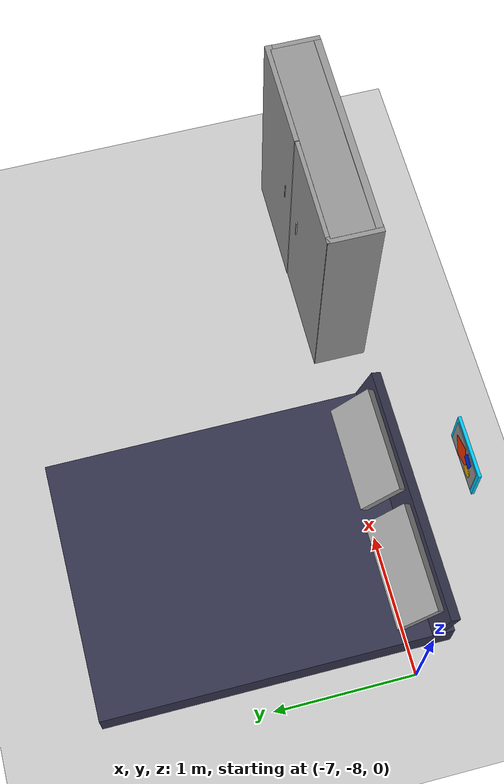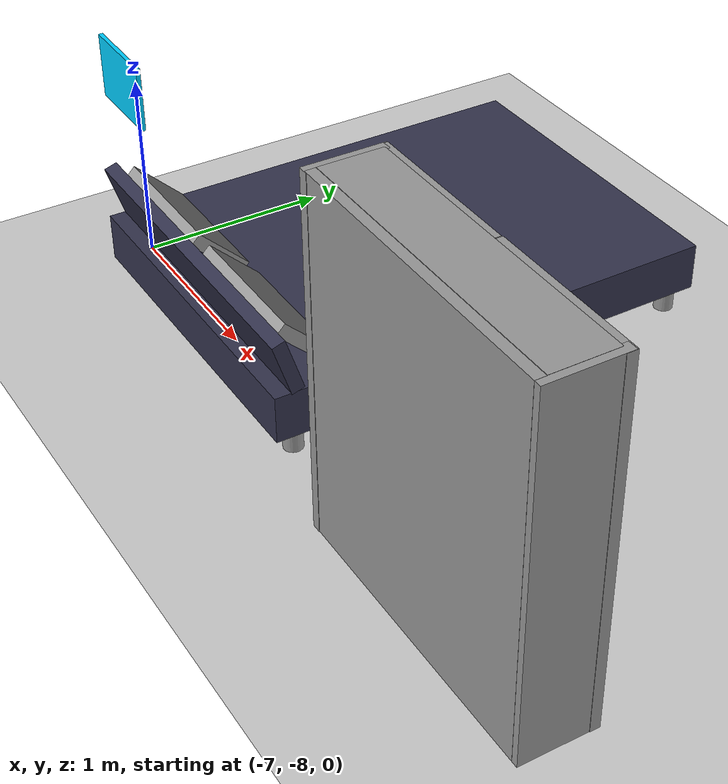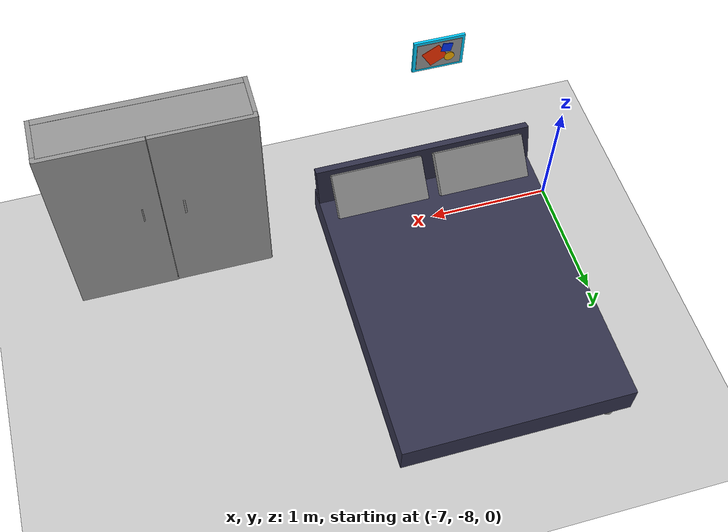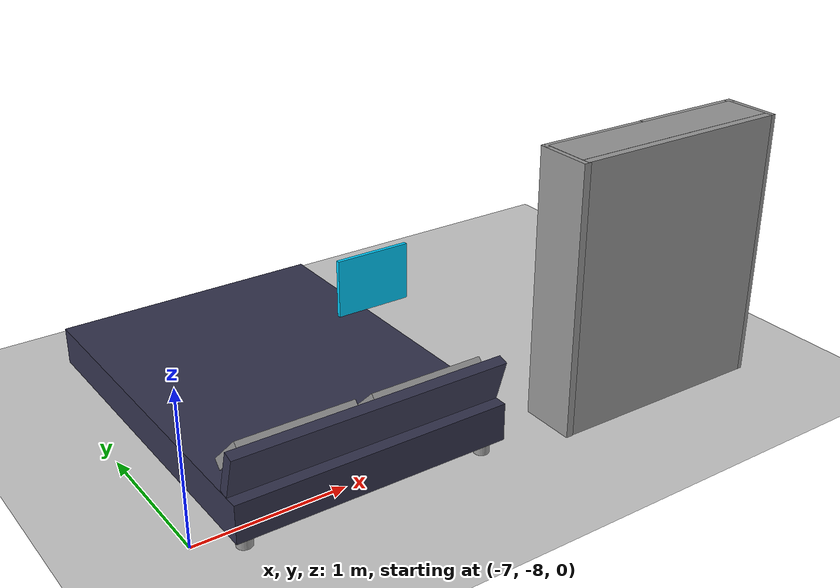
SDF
<sdf version="1.6">
 <world name="default">
  <model name="ground_plane">
   <static>1</static>
   <link name="link">
    <collision name="collision">
     <geometry><plane><normal>0 0 1</normal><size>100 100</size></plane></geometry>
     <surface>
      <contact><collide_bitmask>65535</collide_bitmask></contact>
      <friction><ode><mu>100</mu><mu2>50</mu2></ode></friction>
     </surface>
    </collision>
    <visual name="visual">
     <cast_shadows>0</cast_shadows>
     <geometry><plane><normal>0 0 1</normal><size>100 100</size></plane></geometry>
     <material>
      <script><uri>file://media/materials/scripts/gazebo.material</uri><name>Gazebo/Grey</name></script>
     </material>
    </visual>
   </link>
  </model>
  <model name="my_bed">
   <link name="link">
    <inertial>
     <mass>1</mass>
     <inertia>
      <ixx>0.166667</ixx>
      <ixy>0</ixy>
      <ixz>0</ixz>
      <iyy>0.166667</iyy>
      <iyz>0</iyz>
      <izz>0.166667</izz>
     </inertia>
    </inertial>
    <pose>-1.13234 -0.845126 0 0 -0 0</pose>
    <visual name="visual">
     <geometry><box><size>1.8 2.4 0.25</size></box></geometry>
     <material>
      <script><name>Gazebo/Grey</name><uri>file://media/materials/scripts/gazebo.material</uri></script>
      <shader type="pixel"><normal_map>__default__</normal_map></shader>
      <ambient>0.2 0.2 0.3 1</ambient>
      <diffuse>0.2 0.2 0.3 1</diffuse>
      <specular>0.01 0.01 0.01 1</specular>
      <emissive>0.1 0.1 0.1 1</emissive>
      <lighting>1</lighting>
     </material>
     <pose>0 0 0.25 0 -0 0</pose>
    </visual>
    <collision name="collision">
     <pose>0 0 0.25 0 -0 0</pose>
     <geometry><box><size>1.8 2.4 0.25</size></box></geometry>
     <surface>
      <friction>
       <ode><mu>1</mu><mu2>1</mu2><fdir1>0 0 0</fdir1><slip1>0</slip1><slip2>0</slip2></ode>
       <torsional>
        <coefficient>1</coefficient>
        <patch_radius>0</patch_radius>
        <surface_radius>0</surface_radius>
        <use_patch_radius>1</use_patch_radius>
        <ode><slip>0</slip></ode>
       </torsional>
      </friction>
      <bounce><restitution_coefficient>0</restitution_coefficient><threshold>1e+06</threshold></bounce>
      <contact>
       <collide_without_contact>0</collide_without_contact>
       <collide_without_contact_bitmask>1</collide_without_contact_bitmask>
       <collide_bitmask>1</collide_bitmask>
       <ode>
        <soft_cfm>0</soft_cfm>
        <soft_erp>0.2</soft_erp>
        <kp>1e+13</kp>
        <kd>1</kd>
        <max_vel>0.01</max_vel>
        <min_depth>0</min_depth>
       </ode>
       <bullet>
        <split_impulse>1</split_impulse>
        <split_impulse_penetration_threshold>-0.01</split_impulse_penetration_threshold>
        <soft_cfm>0</soft_cfm>
        <soft_erp>0.2</soft_erp>
        <kp>1e+13</kp>
        <kd>1</kd>
       </bullet>
      </contact>
     </surface>
    </collision>
   </link>
   <link name="link_0">
    <inertial>
     <mass>1</mass>
     <inertia><ixx>0.145833</ixx><ixy>0</ixy><ixz>0</ixz><iyy>0.145833</iyy><iyz>0</iyz><izz>0.125</izz></inertia>
    </inertial>
    <pose>-0.307109 0.243589 0.068801 0 -0 0</pose>
    <gravity>0</gravity>
    <visual name="visual">
     <geometry><cylinder><radius>0.05</radius><length>0.13</length></cylinder></geometry>
     <material>
      <lighting>1</lighting>
      <script><uri>file://media/materials/scripts/gazebo.material</uri><name>Gazebo/Grey</name></script>
      <shader type="pixel"><normal_map>__default__</normal_map></shader>
      <ambient>0.3 0.3 0.3 1</ambient>
      <diffuse>0.7 0.7 0.7 1</diffuse>
      <specular>0.01 0.01 0.01 1</specular>
      <emissive>0 0 0 1</emissive>
     </material>
    </visual>
    <collision name="collision">
     <geometry><cylinder><radius>0.05</radius><length>0.13</length></cylinder></geometry>
     <surface>
      <friction>
       <ode><mu>1</mu><mu2>1</mu2><fdir1>0 0 0</fdir1><slip1>0</slip1><slip2>0</slip2></ode>
       <torsional>
        <coefficient>1</coefficient>
        <patch_radius>0</patch_radius>
        <surface_radius>0</surface_radius>
        <use_patch_radius>1</use_patch_radius>
        <ode><slip>0</slip></ode>
       </torsional>
      </friction>
      <bounce><restitution_coefficient>0</restitution_coefficient><threshold>1e+06</threshold></bounce>
      <contact>
       <collide_without_contact>0</collide_without_contact>
       <collide_without_contact_bitmask>1</collide_without_contact_bitmask>
       <collide_bitmask>1</collide_bitmask>
       <ode>
        <soft_cfm>0</soft_cfm>
        <soft_erp>0.2</soft_erp>
        <kp>1e+13</kp>
        <kd>1</kd>
        <max_vel>0.01</max_vel>
        <min_depth>0</min_depth>
       </ode>
       <bullet>
        <split_impulse>1</split_impulse>
        <split_impulse_penetration_threshold>-0.01</split_impulse_penetration_threshold>
        <soft_cfm>0</soft_cfm>
        <soft_erp>0.2</soft_erp>
        <kp>1e+13</kp>
        <kd>1</kd>
       </bullet>
      </contact>
     </surface>
    </collision>
   </link>
   <link name="link_0_0_clone">
    <inertial>
     <mass>1</mass>
     <inertia>
      <ixx>0.166667</ixx>
      <ixy>0</ixy>
      <ixz>0</ixz>
      <iyy>0.166667</iyy>
      <iyz>0</iyz>
      <izz>0.166667</izz>
     </inertia>
    </inertial>
    <pose>-1.57153 -1.81704 0.527562 0 -0 0</pose>
    <gravity>0</gravity>
    <visual name="visual_0">
     <pose>0 0 0 0.8 -0 0</pose>
     <geometry><box><size>0.75 0.07 0.35</size></box></geometry>
     <material>
      <lighting>1</lighting>
      <script><uri>file://media/materials/scripts/gazebo.material</uri><name>Gazebo/Grey</name></script>
      <shader type="pixel"><normal_map>__default__</normal_map></shader>
      <ambient>1 1 1 0</ambient>
      <diffuse>1 1 1 1</diffuse>
      <specular>0.01 0.01 0.01 1</specular>
      <emissive>0 0 0 1</emissive>
     </material>
    </visual>
    <collision name="collision">
     <pose>0 0 0 0.8 -0 0</pose>
     <geometry><box><size>0.75 0.07 0.35</size></box></geometry>
     <surface>
      <friction>
       <ode><mu>1</mu><mu2>1</mu2><fdir1>0 0 0</fdir1><slip1>0</slip1><slip2>0</slip2></ode>
       <torsional>
        <coefficient>1</coefficient>
        <patch_radius>0</patch_radius>
        <surface_radius>0</surface_radius>
        <use_patch_radius>1</use_patch_radius>
        <ode><slip>0</slip></ode>
       </torsional>
      </friction>
      <bounce><restitution_coefficient>0</restitution_coefficient><threshold>1e+06</threshold></bounce>
      <contact>
       <collide_without_contact>0</collide_without_contact>
       <collide_without_contact_bitmask>1</collide_without_contact_bitmask>
       <collide_bitmask>1</collide_bitmask>
       <ode>
        <soft_cfm>0</soft_cfm>
        <soft_erp>0.2</soft_erp>
        <kp>1e+13</kp>
        <kd>1</kd>
        <max_vel>0.01</max_vel>
        <min_depth>0</min_depth>
       </ode>
       <bullet>
        <split_impulse>1</split_impulse>
        <split_impulse_penetration_threshold>-0.01</split_impulse_penetration_threshold>
        <soft_cfm>0</soft_cfm>
        <soft_erp>0.2</soft_erp>
        <kp>1e+13</kp>
        <kd>1</kd>
       </bullet>
      </contact>
     </surface>
    </collision>
   </link>
   <link name="link_0_0_clone_clone">
    <inertial>
     <mass>1</mass>
     <inertia>
      <ixx>0.166667</ixx>
      <ixy>0</ixy>
      <ixz>0</ixz>
      <iyy>0.166667</iyy>
      <iyz>0</iyz>
      <izz>0.166667</izz>
     </inertia>
    </inertial>
    <pose>-0.71588 -1.81886 0.527562 0 -0 0</pose>
    <gravity>0</gravity>
    <visual name="visual_0">
     <pose>0 0 0 0.8 -0 0</pose>
     <geometry><box><size>0.75 0.07 0.35</size></box></geometry>
     <material>
      <lighting>1</lighting>
      <script><uri>file://media/materials/scripts/gazebo.material</uri><name>Gazebo/Grey</name></script>
      <shader type="pixel"><normal_map>__default__</normal_map></shader>
      <ambient>1 1 1 0</ambient>
      <diffuse>1 1 1 1</diffuse>
      <specular>0.01 0.01 0.01 1</specular>
      <emissive>0 0 0 1</emissive>
     </material>
    </visual>
    <collision name="collision">
     <pose>0 0 0 0.8 -0 0</pose>
     <geometry><box><size>0.75 0.07 0.35</size></box></geometry>
     <surface>
      <friction>
       <ode><mu>1</mu><mu2>1</mu2><fdir1>0 0 0</fdir1><slip1>0</slip1><slip2>0</slip2></ode>
       <torsional>
        <coefficient>1</coefficient>
        <patch_radius>0</patch_radius>
        <surface_radius>0</surface_radius>
        <use_patch_radius>1</use_patch_radius>
        <ode><slip>0</slip></ode>
       </torsional>
      </friction>
      <bounce><restitution_coefficient>0</restitution_coefficient><threshold>1e+06</threshold></bounce>
      <contact>
       <collide_without_contact>0</collide_without_contact>
       <collide_without_contact_bitmask>1</collide_without_contact_bitmask>
       <collide_bitmask>1</collide_bitmask>
       <ode>
        <soft_cfm>0</soft_cfm>
        <soft_erp>0.2</soft_erp>
        <kp>1e+13</kp>
        <kd>1</kd>
        <max_vel>0.01</max_vel>
        <min_depth>0</min_depth>
       </ode>
       <bullet>
        <split_impulse>1</split_impulse>
        <split_impulse_penetration_threshold>-0.01</split_impulse_penetration_threshold>
        <soft_cfm>0</soft_cfm>
        <soft_erp>0.2</soft_erp>
        <kp>1e+13</kp>
        <kd>1</kd>
       </bullet>
      </contact>
     </surface>
    </collision>
   </link>
   <link name="link_0_clone">
    <inertial>
     <mass>1</mass>
     <inertia><ixx>0.145833</ixx><ixy>0</ixy><ixz>0</ixz><iyy>0.145833</iyy><iyz>0</iyz><izz>0.125</izz></inertia>
    </inertial>
    <pose>-1.9007 0.274345 0.068801 0 -0 0</pose>
    <gravity>0</gravity>
    <visual name="visual">
     <geometry><cylinder><radius>0.05</radius><length>0.13</length></cylinder></geometry>
     <material>
      <lighting>1</lighting>
      <script><uri>file://media/materials/scripts/gazebo.material</uri><name>Gazebo/Grey</name></script>
      <shader type="pixel"><normal_map>__default__</normal_map></shader>
      <ambient>0.3 0.3 0.3 1</ambient>
      <diffuse>0.7 0.7 0.7 1</diffuse>
      <specular>0.01 0.01 0.01 1</specular>
      <emissive>0 0 0 1</emissive>
     </material>
    </visual>
    <collision name="collision">
     <geometry><cylinder><radius>0.05</radius><length>0.13</length></cylinder></geometry>
     <surface>
      <friction>
       <ode><mu>1</mu><mu2>1</mu2><fdir1>0 0 0</fdir1><slip1>0</slip1><slip2>0</slip2></ode>
       <torsional>
        <coefficient>1</coefficient>
        <patch_radius>0</patch_radius>
        <surface_radius>0</surface_radius>
        <use_patch_radius>1</use_patch_radius>
        <ode><slip>0</slip></ode>
       </torsional>
      </friction>
      <bounce><restitution_coefficient>0</restitution_coefficient><threshold>1e+06</threshold></bounce>
      <contact>
       <collide_without_contact>0</collide_without_contact>
       <collide_without_contact_bitmask>1</collide_without_contact_bitmask>
       <collide_bitmask>1</collide_bitmask>
       <ode>
        <soft_cfm>0</soft_cfm>
        <soft_erp>0.2</soft_erp>
        <kp>1e+13</kp>
        <kd>1</kd>
        <max_vel>0.01</max_vel>
        <min_depth>0</min_depth>
       </ode>
       <bullet>
        <split_impulse>1</split_impulse>
        <split_impulse_penetration_threshold>-0.01</split_impulse_penetration_threshold>
        <soft_cfm>0</soft_cfm>
        <soft_erp>0.2</soft_erp>
        <kp>1e+13</kp>
        <kd>1</kd>
       </bullet>
      </contact>
     </surface>
    </collision>
   </link>
   <link name="link_0_clone_0">
    <inertial>
     <mass>1</mass>
     <inertia><ixx>0.145833</ixx><ixy>0</ixy><ixz>0</ixz><iyy>0.145833</iyy><iyz>0</iyz><izz>0.125</izz></inertia>
    </inertial>
    <pose>-0.307106 -1.92435 0.068801 0 -0 0</pose>
    <gravity>0</gravity>
    <visual name="visual">
     <geometry><cylinder><radius>0.05</radius><length>0.13</length></cylinder></geometry>
     <material>
      <lighting>1</lighting>
      <script><uri>file://media/materials/scripts/gazebo.material</uri><name>Gazebo/Grey</name></script>
      <shader type="pixel"><normal_map>__default__</normal_map></shader>
      <ambient>0.3 0.3 0.3 1</ambient>
      <diffuse>0.7 0.7 0.7 1</diffuse>
      <specular>0.01 0.01 0.01 1</specular>
      <emissive>0 0 0 1</emissive>
     </material>
    </visual>
    <collision name="collision">
     <geometry><cylinder><radius>0.05</radius><length>0.13</length></cylinder></geometry>
     <surface>
      <friction>
       <ode><mu>1</mu><mu2>1</mu2><fdir1>0 0 0</fdir1><slip1>0</slip1><slip2>0</slip2></ode>
       <torsional>
        <coefficient>1</coefficient>
        <patch_radius>0</patch_radius>
        <surface_radius>0</surface_radius>
        <use_patch_radius>1</use_patch_radius>
        <ode><slip>0</slip></ode>
       </torsional>
      </friction>
      <bounce><restitution_coefficient>0</restitution_coefficient><threshold>1e+06</threshold></bounce>
      <contact>
       <collide_without_contact>0</collide_without_contact>
       <collide_without_contact_bitmask>1</collide_without_contact_bitmask>
       <collide_bitmask>1</collide_bitmask>
       <ode>
        <soft_cfm>0</soft_cfm>
        <soft_erp>0.2</soft_erp>
        <kp>1e+13</kp>
        <kd>1</kd>
        <max_vel>0.01</max_vel>
        <min_depth>0</min_depth>
       </ode>
       <bullet>
        <split_impulse>1</split_impulse>
        <split_impulse_penetration_threshold>-0.01</split_impulse_penetration_threshold>
        <soft_cfm>0</soft_cfm>
        <soft_erp>0.2</soft_erp>
        <kp>1e+13</kp>
        <kd>1</kd>
       </bullet>
      </contact>
     </surface>
    </collision>
   </link>
   <link name="link_0_clone_1">
    <inertial>
     <mass>1</mass>
     <inertia><ixx>0.145833</ixx><ixy>0</ixy><ixz>0</ixz><iyy>0.145833</iyy><iyz>0</iyz><izz>0.125</izz></inertia>
    </inertial>
    <pose>-1.92795 -1.92176 0.068801 0 -0 0</pose>
    <gravity>0</gravity>
    <visual name="visual">
     <geometry><cylinder><radius>0.05</radius><length>0.13</length></cylinder></geometry>
     <material>
      <lighting>1</lighting>
      <script><uri>file://media/materials/scripts/gazebo.material</uri><name>Gazebo/Grey</name></script>
      <shader type="pixel"><normal_map>__default__</normal_map></shader>
      <ambient>0.3 0.3 0.3 1</ambient>
      <diffuse>0.7 0.7 0.7 1</diffuse>
      <specular>0.01 0.01 0.01 1</specular>
      <emissive>0 0 0 1</emissive>
     </material>
    </visual>
    <collision name="collision">
     <geometry><cylinder><radius>0.05</radius><length>0.13</length></cylinder></geometry>
     <surface>
      <friction>
       <ode><mu>1</mu><mu2>1</mu2><fdir1>0 0 0</fdir1><slip1>0</slip1><slip2>0</slip2></ode>
       <torsional>
        <coefficient>1</coefficient>
        <patch_radius>0</patch_radius>
        <surface_radius>0</surface_radius>
        <use_patch_radius>1</use_patch_radius>
        <ode><slip>0</slip></ode>
       </torsional>
      </friction>
      <bounce><restitution_coefficient>0</restitution_coefficient><threshold>1e+06</threshold></bounce>
      <contact>
       <collide_without_contact>0</collide_without_contact>
       <collide_without_contact_bitmask>1</collide_without_contact_bitmask>
       <collide_bitmask>1</collide_bitmask>
       <ode>
        <soft_cfm>0</soft_cfm>
        <soft_erp>0.2</soft_erp>
        <kp>1e+13</kp>
        <kd>1</kd>
        <max_vel>0.01</max_vel>
        <min_depth>0</min_depth>
       </ode>
       <bullet>
        <split_impulse>1</split_impulse>
        <split_impulse_penetration_threshold>-0.01</split_impulse_penetration_threshold>
        <soft_cfm>0</soft_cfm>
        <soft_erp>0.2</soft_erp>
        <kp>1e+13</kp>
        <kd>1</kd>
       </bullet>
      </contact>
     </surface>
    </collision>
   </link>
   <link name="link_1">
    <inertial>
     <mass>1</mass>
     <inertia>
      <ixx>0.166667</ixx>
      <ixy>0</ixy>
      <ixz>0</ixz>
      <iyy>0.166667</iyy>
      <iyz>0</iyz>
      <izz>0.166667</izz>
     </inertia>
    </inertial>
    <pose>-1.13157 -1.96783 0.518762 0 -0 0</pose>
    <visual name="visual">
     <pose>0 0 0 0.3 -0 0</pose>
     <geometry><box><size>1.8 0.07 0.3</size></box></geometry>
     <material>
      <lighting>1</lighting>
      <script><uri>file://media/materials/scripts/gazebo.material</uri><name>Gazebo/Grey</name></script>
      <shader type="pixel"><normal_map>__default__</normal_map></shader>
      <ambient>0.2 0.2 0.3 1</ambient>
      <diffuse>0.2 0.2 0.3 1</diffuse>
      <specular>0.01 0.01 0.01 1</specular>
      <emissive>0.1 0.1 0.1 1</emissive>
     </material>
    </visual>
    <collision name="collision">
     <pose>0 0 0 0.3 -0 0</pose>
     <geometry><box><size>1.8 0.07 0.3</size></box></geometry>
     <surface>
      <friction>
       <ode><mu>1</mu><mu2>1</mu2><fdir1>0 0 0</fdir1><slip1>0</slip1><slip2>0</slip2></ode>
       <torsional>
        <coefficient>1</coefficient>
        <patch_radius>0</patch_radius>
        <surface_radius>0</surface_radius>
        <use_patch_radius>1</use_patch_radius>
        <ode><slip>0</slip></ode>
       </torsional>
      </friction>
      <bounce><restitution_coefficient>0</restitution_coefficient><threshold>1e+06</threshold></bounce>
      <contact>
       <collide_without_contact>0</collide_without_contact>
       <collide_without_contact_bitmask>1</collide_without_contact_bitmask>
       <collide_bitmask>1</collide_bitmask>
       <ode>
        <soft_cfm>0</soft_cfm>
        <soft_erp>0.2</soft_erp>
        <kp>1e+13</kp>
        <kd>1</kd>
        <max_vel>0.01</max_vel>
        <min_depth>0</min_depth>
       </ode>
       <bullet>
        <split_impulse>1</split_impulse>
        <split_impulse_penetration_threshold>-0.01</split_impulse_penetration_threshold>
        <soft_cfm>0</soft_cfm>
        <soft_erp>0.2</soft_erp>
        <kp>1e+13</kp>
        <kd>1</kd>
       </bullet>
      </contact>
     </surface>
    </collision>
   </link>
   <static>1</static>
   <pose>-4.81541 -6.22935 0 0 -0 0</pose>
  </model>
  <model name="my_wardrobe">
   <link name="link">
    <inertial>
     <mass>1</mass>
     <inertia>
      <ixx>0.166667</ixx>
      <ixy>0</ixy>
      <ixz>0</ixz>
      <iyy>0.166667</iyy>
      <iyz>0</iyz>
      <izz>0.166667</izz>
     </inertia>
    </inertial>
    <pose>0.010503 -0.018536 0.006993 0 -0 0</pose>
    <visual name="visual">
     <geometry><box><size>0.05 1.5 1.8</size></box></geometry>
     <material>
      <script><name>Gazebo/Grey</name><uri>file://media/materials/scripts/gazebo.material</uri></script>
      <shader type="pixel"><normal_map>__default__</normal_map></shader>
      <ambient>0.9 0.9 0.9 1</ambient>
      <diffuse>0.9 0.9 0.9 1</diffuse>
      <specular>0.01 0.01 0.01 1</specular>
      <emissive>0 0 0 1</emissive>
     </material>
     <pose>0 0 0.9 0 -0 0</pose>
    </visual>
    <collision name="collision">
     <pose>0 0 0.9 0 -0 0</pose>
     <geometry><box><size>0.05 1.5 1.8</size></box></geometry>
     <surface>
      <friction>
       <ode><mu>1</mu><mu2>1</mu2><fdir1>0 0 0</fdir1><slip1>0</slip1><slip2>0</slip2></ode>
       <torsional>
        <coefficient>1</coefficient>
        <patch_radius>0</patch_radius>
        <surface_radius>0</surface_radius>
        <use_patch_radius>1</use_patch_radius>
        <ode><slip>0</slip></ode>
       </torsional>
      </friction>
      <bounce><restitution_coefficient>0</restitution_coefficient><threshold>1e+06</threshold></bounce>
      <contact>
       <collide_without_contact>0</collide_without_contact>
       <collide_without_contact_bitmask>1</collide_without_contact_bitmask>
       <collide_bitmask>1</collide_bitmask>
       <ode>
        <soft_cfm>0</soft_cfm>
        <soft_erp>0.2</soft_erp>
        <kp>1e+13</kp>
        <kd>1</kd>
        <max_vel>0.01</max_vel>
        <min_depth>0</min_depth>
       </ode>
       <bullet>
        <split_impulse>1</split_impulse>
        <split_impulse_penetration_threshold>-0.01</split_impulse_penetration_threshold>
        <soft_cfm>0</soft_cfm>
        <soft_erp>0.2</soft_erp>
        <kp>1e+13</kp>
        <kd>1</kd>
       </bullet>
      </contact>
     </surface>
    </collision>
   </link>
   <link name="link_1">
    <inertial>
     <mass>1</mass>
     <inertia>
      <ixx>0.166667</ixx>
      <ixy>0</ixy>
      <ixz>0</ixz>
      <iyy>0.166667</iyy>
      <iyz>0</iyz>
      <izz>0.166667</izz>
     </inertia>
    </inertial>
    <pose>0.374225 0.148278 0.975818 0 0 -1.57963</pose>
    <visual name="visual">
     <geometry><box><size>0.015 0.01 0.15</size></box></geometry>
     <material>
      <lighting>1</lighting>
      <script><uri>file://media/materials/scripts/gazebo.material</uri><name>Gazebo/Grey</name></script>
      <shader type="pixel"><normal_map>__default__</normal_map></shader>
      <ambient>0.3 0.3 0.3 1</ambient>
      <diffuse>0.7 0.7 0.7 1</diffuse>
      <specular>0.01 0.01 0.01 1</specular>
      <emissive>0 0 0 1</emissive>
     </material>
    </visual>
    <collision name="collision">
     <geometry><box><size>0.015 0.01 0.15</size></box></geometry>
     <surface>
      <friction>
       <ode><mu>1</mu><mu2>1</mu2><fdir1>0 0 0</fdir1><slip1>0</slip1><slip2>0</slip2></ode>
       <torsional>
        <coefficient>1</coefficient>
        <patch_radius>0</patch_radius>
        <surface_radius>0</surface_radius>
        <use_patch_radius>1</use_patch_radius>
        <ode><slip>0</slip></ode>
       </torsional>
      </friction>
      <bounce><restitution_coefficient>0</restitution_coefficient><threshold>1e+06</threshold></bounce>
      <contact>
       <collide_without_contact>0</collide_without_contact>
       <collide_without_contact_bitmask>1</collide_without_contact_bitmask>
       <collide_bitmask>1</collide_bitmask>
       <ode>
        <soft_cfm>0</soft_cfm>
        <soft_erp>0.2</soft_erp>
        <kp>1e+13</kp>
        <kd>1</kd>
        <max_vel>0.01</max_vel>
        <min_depth>0</min_depth>
       </ode>
       <bullet>
        <split_impulse>1</split_impulse>
        <split_impulse_penetration_threshold>-0.01</split_impulse_penetration_threshold>
        <soft_cfm>0</soft_cfm>
        <soft_erp>0.2</soft_erp>
        <kp>1e+13</kp>
        <kd>1</kd>
       </bullet>
      </contact>
     </surface>
    </collision>
   </link>
   <link name="link_1_clone">
    <inertial>
     <mass>1</mass>
     <inertia>
      <ixx>0.166667</ixx>
      <ixy>0</ixy>
      <ixz>0</ixz>
      <iyy>0.166667</iyy>
      <iyz>0</iyz>
      <izz>0.166667</izz>
     </inertia>
    </inertial>
    <pose>0.36807 -0.165856 0.973071 0 -0 3.12392</pose>
    <visual name="visual">
     <geometry><box><size>0.015 0.01 0.15</size></box></geometry>
     <material>
      <lighting>1</lighting>
      <script><uri>file://media/materials/scripts/gazebo.material</uri><name>Gazebo/Grey</name></script>
      <shader type="pixel"><normal_map>__default__</normal_map></shader>
      <ambient>0.3 0.3 0.3 1</ambient>
      <diffuse>0.7 0.7 0.7 1</diffuse>
      <specular>0.01 0.01 0.01 1</specular>
      <emissive>0 0 0 1</emissive>
     </material>
    </visual>
    <collision name="collision">
     <geometry><box><size>0.015 0.01 0.15</size></box></geometry>
     <surface>
      <friction>
       <ode><mu>1</mu><mu2>1</mu2><fdir1>0 0 0</fdir1><slip1>0</slip1><slip2>0</slip2></ode>
       <torsional>
        <coefficient>1</coefficient>
        <patch_radius>0</patch_radius>
        <surface_radius>0</surface_radius>
        <use_patch_radius>1</use_patch_radius>
        <ode><slip>0</slip></ode>
       </torsional>
      </friction>
      <bounce><restitution_coefficient>0</restitution_coefficient><threshold>1e+06</threshold></bounce>
      <contact>
       <collide_without_contact>0</collide_without_contact>
       <collide_without_contact_bitmask>1</collide_without_contact_bitmask>
       <collide_bitmask>1</collide_bitmask>
       <ode>
        <soft_cfm>0</soft_cfm>
        <soft_erp>0.2</soft_erp>
        <kp>1e+13</kp>
        <kd>1</kd>
        <max_vel>0.01</max_vel>
        <min_depth>0</min_depth>
       </ode>
       <bullet>
        <split_impulse>1</split_impulse>
        <split_impulse_penetration_threshold>-0.01</split_impulse_penetration_threshold>
        <soft_cfm>0</soft_cfm>
        <soft_erp>0.2</soft_erp>
        <kp>1e+13</kp>
        <kd>1</kd>
       </bullet>
      </contact>
     </surface>
    </collision>
   </link>
   <link name="link_clone">
    <inertial>
     <mass>1</mass>
     <inertia>
      <ixx>0.166667</ixx>
      <ixy>0</ixy>
      <ixz>0</ixz>
      <iyy>0.166667</iyy>
      <iyz>0</iyz>
      <izz>0.166667</izz>
     </inertia>
    </inertial>
    <pose>0.199559 -0.011174 -1.077 1.1e-05 -0.001065 2e-06</pose>
    <visual name="visual">
     <geometry><box><size>0.3 1.5 0.04</size></box></geometry>
     <material>
      <script><name>Gazebo/Grey</name><uri>file://media/materials/scripts/gazebo.material</uri></script>
      <shader type="pixel"><normal_map>__default__</normal_map></shader>
      <ambient>0.9 0.9 0.9 1</ambient>
      <diffuse>0.9 0.9 0.9 1</diffuse>
      <specular>0.01 0.01 0.01 1</specular>
      <emissive>0 0 0 1</emissive>
     </material>
     <pose>0 0 1.1 0 -0 0</pose>
    </visual>
    <collision name="collision">
     <pose>0 0 1.1 0 -0 0</pose>
     <geometry><box><size>0.3 1.5 0.04</size></box></geometry>
     <surface>
      <friction>
       <ode><mu>1</mu><mu2>1</mu2><fdir1>0 0 0</fdir1><slip1>0</slip1><slip2>0</slip2></ode>
       <torsional>
        <coefficient>1</coefficient>
        <patch_radius>0</patch_radius>
        <surface_radius>0</surface_radius>
        <use_patch_radius>1</use_patch_radius>
        <ode><slip>0</slip></ode>
       </torsional>
      </friction>
      <bounce><restitution_coefficient>0</restitution_coefficient><threshold>1e+06</threshold></bounce>
      <contact>
       <collide_without_contact>0</collide_without_contact>
       <collide_without_contact_bitmask>1</collide_without_contact_bitmask>
       <collide_bitmask>1</collide_bitmask>
       <ode>
        <soft_cfm>0</soft_cfm>
        <soft_erp>0.2</soft_erp>
        <kp>1e+13</kp>
        <kd>1</kd>
        <max_vel>0.01</max_vel>
        <min_depth>0</min_depth>
       </ode>
       <bullet>
        <split_impulse>1</split_impulse>
        <split_impulse_penetration_threshold>-0.01</split_impulse_penetration_threshold>
        <soft_cfm>0</soft_cfm>
        <soft_erp>0.2</soft_erp>
        <kp>1e+13</kp>
        <kd>1</kd>
       </bullet>
      </contact>
     </surface>
    </collision>
   </link>
   <link name="link_clone_0">
    <inertial>
     <mass>1</mass>
     <inertia>
      <ixx>0.166667</ixx>
      <ixy>0</ixy>
      <ixz>0</ixz>
      <iyy>0.166667</iyy>
      <iyz>0</iyz>
      <izz>0.166667</izz>
     </inertia>
    </inertial>
    <pose>0.1762 -0.777121 0.006003 0 -0 0</pose>
    <visual name="visual">
     <geometry><box><size>0.05 0.38 1.8</size></box></geometry>
     <material>
      <script><name>Gazebo/Grey</name><uri>file://media/materials/scripts/gazebo.material</uri></script>
      <shader type="pixel"><normal_map>__default__</normal_map></shader>
      <ambient>0.9 0.9 0.9 1</ambient>
      <diffuse>0.9 0.9 0.9 1</diffuse>
      <specular>0.01 0.01 0.01 1</specular>
      <emissive>0 0 0 1</emissive>
     </material>
     <pose>0 0 0.9 0 -0 1.5707</pose>
    </visual>
    <collision name="collision">
     <pose>0 0 0.9 0 -0 1.5707</pose>
     <geometry><box><size>0.05 0.38 1.8</size></box></geometry>
     <surface>
      <friction>
       <ode><mu>1</mu><mu2>1</mu2><fdir1>0 0 0</fdir1><slip1>0</slip1><slip2>0</slip2></ode>
       <torsional>
        <coefficient>1</coefficient>
        <patch_radius>0</patch_radius>
        <surface_radius>0</surface_radius>
        <use_patch_radius>1</use_patch_radius>
        <ode><slip>0</slip></ode>
       </torsional>
      </friction>
      <bounce><restitution_coefficient>0</restitution_coefficient><threshold>1e+06</threshold></bounce>
      <contact>
       <collide_without_contact>0</collide_without_contact>
       <collide_without_contact_bitmask>1</collide_without_contact_bitmask>
       <collide_bitmask>1</collide_bitmask>
       <ode>
        <soft_cfm>0</soft_cfm>
        <soft_erp>0.2</soft_erp>
        <kp>1e+13</kp>
        <kd>1</kd>
        <max_vel>0.01</max_vel>
        <min_depth>0</min_depth>
       </ode>
       <bullet>
        <split_impulse>1</split_impulse>
        <split_impulse_penetration_threshold>-0.01</split_impulse_penetration_threshold>
        <soft_cfm>0</soft_cfm>
        <soft_erp>0.2</soft_erp>
        <kp>1e+13</kp>
        <kd>1</kd>
       </bullet>
      </contact>
     </surface>
    </collision>
   </link>
   <link name="link_clone_0_clone">
    <inertial>
     <mass>1</mass>
     <inertia>
      <ixx>0.166667</ixx>
      <ixy>0</ixy>
      <ixz>0</ixz>
      <iyy>0.166667</iyy>
      <iyz>0</iyz>
      <izz>0.166667</izz>
     </inertia>
    </inertial>
    <pose>0.173251 0.740189 0.006003 0 -0 0</pose>
    <visual name="visual">
     <geometry><box><size>0.05 0.38 1.8</size></box></geometry>
     <material>
      <script><name>Gazebo/Grey</name><uri>file://media/materials/scripts/gazebo.material</uri></script>
      <shader type="pixel"><normal_map>__default__</normal_map></shader>
      <ambient>0.9 0.9 0.9 1</ambient>
      <diffuse>0.9 0.9 0.9 1</diffuse>
      <specular>0.01 0.01 0.01 1</specular>
      <emissive>0 0 0 1</emissive>
     </material>
     <pose>0 0 0.9 0 -0 1.5707</pose>
    </visual>
    <collision name="collision">
     <pose>0 0 0.9 0 -0 1.5707</pose>
     <geometry><box><size>0.05 0.38 1.8</size></box></geometry>
     <surface>
      <friction>
       <ode><mu>1</mu><mu2>1</mu2><fdir1>0 0 0</fdir1><slip1>0</slip1><slip2>0</slip2></ode>
       <torsional>
        <coefficient>1</coefficient>
        <patch_radius>0</patch_radius>
        <surface_radius>0</surface_radius>
        <use_patch_radius>1</use_patch_radius>
        <ode><slip>0</slip></ode>
       </torsional>
      </friction>
      <bounce><restitution_coefficient>0</restitution_coefficient><threshold>1e+06</threshold></bounce>
      <contact>
       <collide_without_contact>0</collide_without_contact>
       <collide_without_contact_bitmask>1</collide_without_contact_bitmask>
       <collide_bitmask>1</collide_bitmask>
       <ode>
        <soft_cfm>0</soft_cfm>
        <soft_erp>0.2</soft_erp>
        <kp>1e+13</kp>
        <kd>1</kd>
        <max_vel>0.01</max_vel>
        <min_depth>0</min_depth>
       </ode>
       <bullet>
        <split_impulse>1</split_impulse>
        <split_impulse_penetration_threshold>-0.01</split_impulse_penetration_threshold>
        <soft_cfm>0</soft_cfm>
        <soft_erp>0.2</soft_erp>
        <kp>1e+13</kp>
        <kd>1</kd>
       </bullet>
      </contact>
     </surface>
    </collision>
   </link>
   <link name="link_clone_0_clone_0">
    <inertial>
     <mass>1</mass>
     <inertia>
      <ixx>0.166667</ixx>
      <ixy>0</ixy>
      <ixz>0</ixz>
      <iyy>0.166667</iyy>
      <iyz>0</iyz>
      <izz>0.166667</izz>
     </inertia>
    </inertial>
    <pose>0.345768 -0.414419 0.006003 0 -0 0</pose>
    <visual name="visual">
     <geometry><box><size>0.05 0.78 1.8</size></box></geometry>
     <material>
      <script><name>Gazebo/Grey</name><uri>file://media/materials/scripts/gazebo.material</uri></script>
      <shader type="pixel"><normal_map>__default__</normal_map></shader>
      <ambient>0.87 0.87 0.87 1</ambient>
      <diffuse>0.87 0.87 0.87 1</diffuse>
      <specular>0.01 0.01 0.01 1</specular>
      <emissive>0 0 0 1</emissive>
     </material>
     <pose>0 0 0.9 0 -0 0</pose>
    </visual>
    <collision name="collision">
     <pose>0 0 0.9 0 -0 0</pose>
     <geometry><box><size>0.05 0.78 1.8</size></box></geometry>
     <surface>
      <friction>
       <ode><mu>1</mu><mu2>1</mu2><fdir1>0 0 0</fdir1><slip1>0</slip1><slip2>0</slip2></ode>
       <torsional>
        <coefficient>1</coefficient>
        <patch_radius>0</patch_radius>
        <surface_radius>0</surface_radius>
        <use_patch_radius>1</use_patch_radius>
        <ode><slip>0</slip></ode>
       </torsional>
      </friction>
      <bounce><restitution_coefficient>0</restitution_coefficient><threshold>1e+06</threshold></bounce>
      <contact>
       <collide_without_contact>0</collide_without_contact>
       <collide_without_contact_bitmask>1</collide_without_contact_bitmask>
       <collide_bitmask>1</collide_bitmask>
       <ode>
        <soft_cfm>0</soft_cfm>
        <soft_erp>0.2</soft_erp>
        <kp>1e+13</kp>
        <kd>1</kd>
        <max_vel>0.01</max_vel>
        <min_depth>0</min_depth>
       </ode>
       <bullet>
        <split_impulse>1</split_impulse>
        <split_impulse_penetration_threshold>-0.01</split_impulse_penetration_threshold>
        <soft_cfm>0</soft_cfm>
        <soft_erp>0.2</soft_erp>
        <kp>1e+13</kp>
        <kd>1</kd>
       </bullet>
      </contact>
     </surface>
    </collision>
   </link>
   <link name="link_clone_0_clone_0_clone">
    <inertial>
     <mass>1</mass>
     <inertia>
      <ixx>0.166667</ixx>
      <ixy>0</ixy>
      <ixz>0</ixz>
      <iyy>0.166667</iyy>
      <iyz>0</iyz>
      <izz>0.166667</izz>
     </inertia>
    </inertial>
    <pose>0.34164 0.370965 0.006003 0 -0 0</pose>
    <visual name="visual">
     <geometry><box><size>0.05 0.78 1.8</size></box></geometry>
     <material>
      <script><name>Gazebo/Grey</name><uri>file://media/materials/scripts/gazebo.material</uri></script>
      <shader type="pixel"><normal_map>__default__</normal_map></shader>
      <ambient>0.87 0.87 0.87 1</ambient>
      <diffuse>0.87 0.87 0.87 1</diffuse>
      <specular>0.01 0.01 0.01 1</specular>
      <emissive>0 0 0 1</emissive>
     </material>
     <pose>0 0 0.9 0 -0 0</pose>
    </visual>
    <collision name="collision">
     <pose>0 0 0.9 0 -0 0</pose>
     <geometry><box><size>0.05 0.78 1.8</size></box></geometry>
     <surface>
      <friction>
       <ode><mu>1</mu><mu2>1</mu2><fdir1>0 0 0</fdir1><slip1>0</slip1><slip2>0</slip2></ode>
       <torsional>
        <coefficient>1</coefficient>
        <patch_radius>0</patch_radius>
        <surface_radius>0</surface_radius>
        <use_patch_radius>1</use_patch_radius>
        <ode><slip>0</slip></ode>
       </torsional>
      </friction>
      <bounce><restitution_coefficient>0</restitution_coefficient><threshold>1e+06</threshold></bounce>
      <contact>
       <collide_without_contact>0</collide_without_contact>
       <collide_without_contact_bitmask>1</collide_without_contact_bitmask>
       <collide_bitmask>1</collide_bitmask>
       <ode>
        <soft_cfm>0</soft_cfm>
        <soft_erp>0.2</soft_erp>
        <kp>1e+13</kp>
        <kd>1</kd>
        <max_vel>0.01</max_vel>
        <min_depth>0</min_depth>
       </ode>
       <bullet>
        <split_impulse>1</split_impulse>
        <split_impulse_penetration_threshold>-0.01</split_impulse_penetration_threshold>
        <soft_cfm>0</soft_cfm>
        <soft_erp>0.2</soft_erp>
        <kp>1e+13</kp>
        <kd>1</kd>
       </bullet>
      </contact>
     </surface>
    </collision>
   </link>
   <link name="link_clone_clone_0">
    <inertial>
     <mass>1</mass>
     <inertia>
      <ixx>0.166667</ixx>
      <ixy>0</ixy>
      <ixz>0</ixz>
      <iyy>0.166667</iyy>
      <iyz>0</iyz>
      <izz>0.166667</izz>
     </inertia>
    </inertial>
    <pose>0.186363 -0.017339 0.93719 2.2e-05 0.000604 0.000114</pose>
    <gravity>0</gravity>
    <visual name="visual">
     <geometry><box><size>0.3 1.5 0.04</size></box></geometry>
     <material>
      <script><name>Gazebo/Grey</name><uri>file://media/materials/scripts/gazebo.material</uri></script>
      <shader type="pixel"><normal_map>__default__</normal_map></shader>
      <ambient>0.9 0.9 0.9 1</ambient>
      <diffuse>0.9 0.9 0.9 1</diffuse>
      <specular>0.01 0.01 0.01 1</specular>
      <emissive>0 0 0 1</emissive>
     </material>
     <pose>0 0 0.85 0 -0 0</pose>
    </visual>
    <collision name="collision">
     <pose>0 0 0.85 0 -0 0</pose>
     <geometry><box><size>0.3 1.5 0.04</size></box></geometry>
     <surface>
      <friction>
       <ode><mu>1</mu><mu2>1</mu2><fdir1>0 0 0</fdir1><slip1>0</slip1><slip2>0</slip2></ode>
       <torsional>
        <coefficient>1</coefficient>
        <patch_radius>0</patch_radius>
        <surface_radius>0</surface_radius>
        <use_patch_radius>1</use_patch_radius>
        <ode><slip>0</slip></ode>
       </torsional>
      </friction>
      <bounce><restitution_coefficient>0</restitution_coefficient><threshold>1e+06</threshold></bounce>
      <contact>
       <collide_without_contact>0</collide_without_contact>
       <collide_without_contact_bitmask>1</collide_without_contact_bitmask>
       <collide_bitmask>1</collide_bitmask>
       <ode>
        <soft_cfm>0</soft_cfm>
        <soft_erp>0.2</soft_erp>
        <kp>1e+13</kp>
        <kd>1</kd>
        <max_vel>0.01</max_vel>
        <min_depth>0</min_depth>
       </ode>
       <bullet>
        <split_impulse>1</split_impulse>
        <split_impulse_penetration_threshold>-0.01</split_impulse_penetration_threshold>
        <soft_cfm>0</soft_cfm>
        <soft_erp>0.2</soft_erp>
        <kp>1e+13</kp>
        <kd>1</kd>
       </bullet>
      </contact>
     </surface>
    </collision>
   </link>
   <static>1</static>
   <pose>-3.83138 -8.32756 0 0 -0 1.56496</pose>
  </model>
  <model name="my_frame_0">
   <link name="link">
    <inertial>
     <mass>1</mass>
     <inertia>
      <ixx>0.166667</ixx>
      <ixy>0</ixy>
      <ixz>0</ixz>
      <iyy>0.166667</iyy>
      <iyz>0</iyz>
      <izz>0.166667</izz>
     </inertia>
    </inertial>
    <gravity>0</gravity>
    <visual name="visual">
     <geometry><box><size>0.02 0.4 0.3</size></box></geometry>
     <material>
      <script><name>Gazebo/Grey</name><uri>file://media/materials/scripts/gazebo.material</uri></script>
      <shader type="pixel"><normal_map>__default__</normal_map></shader>
      <ambient>0 0.81 1 1</ambient>
      <diffuse>0.7 0.7 0.7 1</diffuse>
      <specular>0.01 0.01 0.01 1</specular>
      <emissive>0 0 0 1</emissive>
     </material>
    </visual>
    <collision name="collision">
     <geometry><box><size>0.02 0.4 0.3</size></box></geometry>
     <surface>
      <friction>
       <ode><mu>1</mu><mu2>1</mu2><fdir1>0 0 0</fdir1><slip1>0</slip1><slip2>0</slip2></ode>
       <torsional>
        <coefficient>1</coefficient>
        <patch_radius>0</patch_radius>
        <surface_radius>0</surface_radius>
        <use_patch_radius>1</use_patch_radius>
        <ode><slip>0</slip></ode>
       </torsional>
      </friction>
      <bounce><restitution_coefficient>0</restitution_coefficient><threshold>1e+06</threshold></bounce>
      <contact>
       <collide_without_contact>0</collide_without_contact>
       <collide_without_contact_bitmask>1</collide_without_contact_bitmask>
       <collide_bitmask>1</collide_bitmask>
       <ode>
        <soft_cfm>0</soft_cfm>
        <soft_erp>0.2</soft_erp>
        <kp>1e+13</kp>
        <kd>1</kd>
        <max_vel>0.01</max_vel>
        <min_depth>0</min_depth>
       </ode>
       <bullet>
        <split_impulse>1</split_impulse>
        <split_impulse_penetration_threshold>-0.01</split_impulse_penetration_threshold>
        <soft_cfm>0</soft_cfm>
        <soft_erp>0.2</soft_erp>
        <kp>1e+13</kp>
        <kd>1</kd>
       </bullet>
      </contact>
     </surface>
    </collision>
   </link>
   <link name="link_2">
    <inertial>
     <mass>1</mass>
     <inertia><ixx>0.145833</ixx><ixy>0</ixy><ixz>0</ixz><iyy>0.145833</iyy><iyz>0</iyz><izz>0.125</izz></inertia>
    </inertial>
    <pose>0.015889 0.084711 -0.037956 0 -0 0</pose>
    <gravity>0</gravity>
    <visual name="visual">
     <pose>0 0 0 0 1.5707 0</pose>
     <geometry><cylinder><radius>0.04</radius><length>0.01</length></cylinder></geometry>
     <material>
      <lighting>1</lighting>
      <script><uri>file://media/materials/scripts/gazebo.material</uri><name>Gazebo/Grey</name></script>
      <shader type="pixel"><normal_map>__default__</normal_map></shader>
      <ambient>0.99 0.7 0 1</ambient>
      <diffuse>0.7 0.7 0.7 1</diffuse>
      <specular>0.01 0.01 0.01 1</specular>
      <emissive>0 0 0 1</emissive>
     </material>
    </visual>
    <collision name="collision">
     <pose>0 0 0 0 1.5707 0</pose>
     <geometry><cylinder><radius>0.04</radius><length>0.01</length></cylinder></geometry>
     <surface>
      <friction>
       <ode><mu>1</mu><mu2>1</mu2><fdir1>0 0 0</fdir1><slip1>0</slip1><slip2>0</slip2></ode>
       <torsional>
        <coefficient>1</coefficient>
        <patch_radius>0</patch_radius>
        <surface_radius>0</surface_radius>
        <use_patch_radius>1</use_patch_radius>
        <ode><slip>0</slip></ode>
       </torsional>
      </friction>
      <bounce><restitution_coefficient>0</restitution_coefficient><threshold>1e+06</threshold></bounce>
      <contact>
       <collide_without_contact>0</collide_without_contact>
       <collide_without_contact_bitmask>1</collide_without_contact_bitmask>
       <collide_bitmask>1</collide_bitmask>
       <ode>
        <soft_cfm>0</soft_cfm>
        <soft_erp>0.2</soft_erp>
        <kp>1e+13</kp>
        <kd>1</kd>
        <max_vel>0.01</max_vel>
        <min_depth>0</min_depth>
       </ode>
       <bullet>
        <split_impulse>1</split_impulse>
        <split_impulse_penetration_threshold>-0.01</split_impulse_penetration_threshold>
        <soft_cfm>0</soft_cfm>
        <soft_erp>0.2</soft_erp>
        <kp>1e+13</kp>
        <kd>1</kd>
       </bullet>
      </contact>
     </surface>
    </collision>
   </link>
   <link name="link_3">
    <inertial>
     <mass>1</mass>
     <inertia>
      <ixx>0.166667</ixx>
      <ixy>0</ixy>
      <ixz>0</ixz>
      <iyy>0.166667</iyy>
      <iyz>0</iyz>
      <izz>0.166667</izz>
     </inertia>
    </inertial>
    <pose>0.013898 -0.032005 0 0 -0 0</pose>
    <gravity>0</gravity>
    <visual name="visual">
     <pose>0 0 0 0.54 -0 0</pose>
     <geometry><box><size>0.01 0.15 0.15</size></box></geometry>
     <material>
      <lighting>1</lighting>
      <script><uri>file://media/materials/scripts/gazebo.material</uri><name>Gazebo/Grey</name></script>
      <shader type="pixel"><normal_map>__default__</normal_map></shader>
      <ambient>1 0.2 0 1</ambient>
      <diffuse>0.7 0.7 0.7 1</diffuse>
      <specular>0.01 0.01 0.01 1</specular>
      <emissive>0 0 0 1</emissive>
     </material>
    </visual>
    <collision name="collision">
     <pose>0 0 0 0.54 -0 0</pose>
     <geometry><box><size>0.01 0.15 0.15</size></box></geometry>
     <surface>
      <friction>
       <ode><mu>1</mu><mu2>1</mu2><fdir1>0 0 0</fdir1><slip1>0</slip1><slip2>0</slip2></ode>
       <torsional>
        <coefficient>1</coefficient>
        <patch_radius>0</patch_radius>
        <surface_radius>0</surface_radius>
        <use_patch_radius>1</use_patch_radius>
        <ode><slip>0</slip></ode>
       </torsional>
      </friction>
      <bounce><restitution_coefficient>0</restitution_coefficient><threshold>1e+06</threshold></bounce>
      <contact>
       <collide_without_contact>0</collide_without_contact>
       <collide_without_contact_bitmask>1</collide_without_contact_bitmask>
       <collide_bitmask>1</collide_bitmask>
       <ode>
        <soft_cfm>0</soft_cfm>
        <soft_erp>0.2</soft_erp>
        <kp>1e+13</kp>
        <kd>1</kd>
        <max_vel>0.01</max_vel>
        <min_depth>0</min_depth>
       </ode>
       <bullet>
        <split_impulse>1</split_impulse>
        <split_impulse_penetration_threshold>-0.01</split_impulse_penetration_threshold>
        <soft_cfm>0</soft_cfm>
        <soft_erp>0.2</soft_erp>
        <kp>1e+13</kp>
        <kd>1</kd>
       </bullet>
      </contact>
     </surface>
    </collision>
   </link>
   <link name="link_3_clone">
    <inertial>
     <mass>1</mass>
     <inertia>
      <ixx>0.166667</ixx>
      <ixy>0</ixy>
      <ixz>0</ixz>
      <iyy>0.166667</iyy>
      <iyz>0</iyz>
      <izz>0.166667</izz>
     </inertia>
    </inertial>
    <pose>0.015334 0.059714 0.061338 0 -0 0</pose>
    <gravity>0</gravity>
    <visual name="visual">
     <pose>0 0 0 -0.2 0 0</pose>
     <geometry><box><size>0.01 0.08 0.08</size></box></geometry>
     <material>
      <lighting>1</lighting>
      <script><uri>file://media/materials/scripts/gazebo.material</uri><name>Gazebo/Grey</name></script>
      <shader type="pixel"><normal_map>__default__</normal_map></shader>
      <ambient>0 0.2 1 1</ambient>
      <diffuse>0.7 0.7 0.7 1</diffuse>
      <specular>0.01 0.01 0.01 1</specular>
      <emissive>0 0 0 1</emissive>
     </material>
    </visual>
    <collision name="collision">
     <pose>0 0 0 -0.2 0 0</pose>
     <geometry><box><size>0.01 0.08 0.08</size></box></geometry>
     <surface>
      <friction>
       <ode><mu>1</mu><mu2>1</mu2><fdir1>0 0 0</fdir1><slip1>0</slip1><slip2>0</slip2></ode>
       <torsional>
        <coefficient>1</coefficient>
        <patch_radius>0</patch_radius>
        <surface_radius>0</surface_radius>
        <use_patch_radius>1</use_patch_radius>
        <ode><slip>0</slip></ode>
       </torsional>
      </friction>
      <bounce><restitution_coefficient>0</restitution_coefficient><threshold>1e+06</threshold></bounce>
      <contact>
       <collide_without_contact>0</collide_without_contact>
       <collide_without_contact_bitmask>1</collide_without_contact_bitmask>
       <collide_bitmask>1</collide_bitmask>
       <ode>
        <soft_cfm>0</soft_cfm>
        <soft_erp>0.2</soft_erp>
        <kp>1e+13</kp>
        <kd>1</kd>
        <max_vel>0.01</max_vel>
        <min_depth>0</min_depth>
       </ode>
       <bullet>
        <split_impulse>1</split_impulse>
        <split_impulse_penetration_threshold>-0.01</split_impulse_penetration_threshold>
        <soft_cfm>0</soft_cfm>
        <soft_erp>0.2</soft_erp>
        <kp>1e+13</kp>
        <kd>1</kd>
       </bullet>
      </contact>
     </surface>
    </collision>
   </link>
   <link name="link_clone">
    <inertial>
     <mass>1</mass>
     <inertia>
      <ixx>0.166667</ixx>
      <ixy>0</ixy>
      <ixz>0</ixz>
      <iyy>0.166667</iyy>
      <iyz>0</iyz>
      <izz>0.166667</izz>
     </inertia>
    </inertial>
    <pose>0.005108 0.000801 0 0 -0 0</pose>
    <gravity>0</gravity>
    <visual name="visual">
     <geometry><box><size>0.02 0.35 0.25</size></box></geometry>
     <material>
      <script><name>Gazebo/Grey</name><uri>file://media/materials/scripts/gazebo.material</uri></script>
      <shader type="pixel"><normal_map>__default__</normal_map></shader>
      <ambient>1 1 1 1</ambient>
      <diffuse>1 1 1 1</diffuse>
      <specular>0.01 0.01 0.01 1</specular>
      <emissive>0 0 0 1</emissive>
     </material>
    </visual>
    <collision name="collision">
     <geometry><box><size>0.02 0.4 0.3</size></box></geometry>
     <surface>
      <friction>
       <ode><mu>1</mu><mu2>1</mu2><fdir1>0 0 0</fdir1><slip1>0</slip1><slip2>0</slip2></ode>
       <torsional>
        <coefficient>1</coefficient>
        <patch_radius>0</patch_radius>
        <surface_radius>0</surface_radius>
        <use_patch_radius>1</use_patch_radius>
        <ode><slip>0</slip></ode>
       </torsional>
      </friction>
      <bounce><restitution_coefficient>0</restitution_coefficient><threshold>1e+06</threshold></bounce>
      <contact>
       <collide_without_contact>0</collide_without_contact>
       <collide_without_contact_bitmask>1</collide_without_contact_bitmask>
       <collide_bitmask>1</collide_bitmask>
       <ode>
        <soft_cfm>0</soft_cfm>
        <soft_erp>0.2</soft_erp>
        <kp>1e+13</kp>
        <kd>1</kd>
        <max_vel>0.01</max_vel>
        <min_depth>0</min_depth>
       </ode>
       <bullet>
        <split_impulse>1</split_impulse>
        <split_impulse_penetration_threshold>-0.01</split_impulse_penetration_threshold>
        <soft_cfm>0</soft_cfm>
        <soft_erp>0.2</soft_erp>
        <kp>1e+13</kp>
        <kd>1</kd>
       </bullet>
      </contact>
     </surface>
    </collision>
   </link>
   <static>1</static>
   <pose>-6.07164 -8.43104 1.53119 0 -0 1.56627</pose>
  </model>
 </world>
</sdf>
